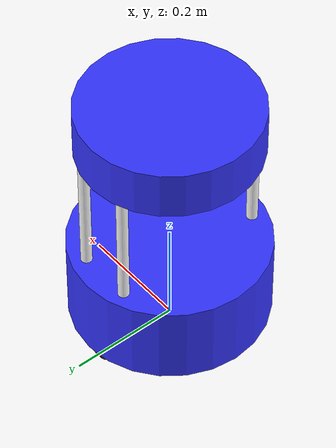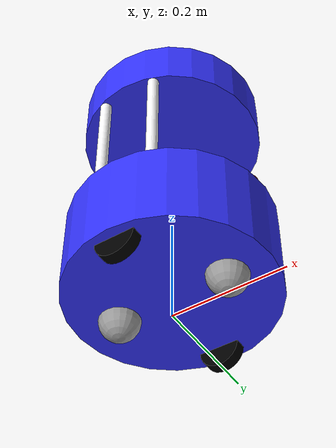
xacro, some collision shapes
<?xml version="1.0"?>
<robot xmlns:xacro="http://www.ros.org/wiki/xacro" name="barista_bot">

    <!-- Arguments -->
    <xacro:arg name="robot_name" default="robot1"/>
    <xacro:property name = "robot_name" value = "$(arg robot_name)"/>

    <xacro:arg name="robot_color" default="Blue"/>
    <xacro:property name = "robot_color" value = "$(arg robot_color)"/>
    <!-- PLUGINS -->

    <!-- Materials -->
    <material name="white"><color rgba="1 1 1 1"/></material>
    <material name="orange"><color rgba="1 0.3 0.1 1"/></material>
    <material name="Blue"><color rgba="0.2 0.2 1 1"/></material>
    <material name="black"><color rgba="0 0 0 1"/></material>
    <material name="Red"><color rgba="1 0 0 1"/></material>

    <!-- Base -->
    <link name="base_footprint"/>

    <joint name="base_joint" type="fixed">
        <parent link="base_footprint"/>
        <child link="base_link"/>
        <origin xyz="0 0 0.1127"/>
    </joint>

    <link name="base_link">
        <inertial>
        <mass value="10.0"/>
        <origin xyz="0 0 0" rpy="0 0 0"/>
        <inertia ixx="0.09923083333333334" ixy="0" ixz="0" iyy="0.09923083333333334" iyz="0" izz="0.15842"/>
        </inertial>
        <visual>
        <origin xyz="0 0 0"/>
        <geometry><cylinder radius="0.178" length="0.155"/></geometry>
        <material name="${robot_color}"/>
        </visual>
        <collision>
        <origin xyz="0 0 0"/>
        <geometry><cylinder radius="0.178" length="0.155"/></geometry>
        </collision>
    </link>

    <gazebo reference="base_link">
      <mu1 value="0.0"/>
      <mu2 value="0.0"/>
      <kp value="1000000.0"/>
      <kd value="10.0"/>
      <fdir1 value="1 0 0"/>
      <material>Gazebo/${robot_color}</material>
    </gazebo>

    <!-- Include modular components -->
    <xacro:include filename="$(find barista_robot_description)/xacro/cup_holder_tray.xacro"/>
    <xacro:include filename="$(find barista_robot_description)/xacro/standoff_rod.xacro"/>
    <xacro:include filename="$(find barista_robot_description)/xacro/drive_wheel.xacro"/>
    <xacro:include filename="$(find barista_robot_description)/xacro/caster_wheel.xacro"/>
    <xacro:include filename="$(find barista_robot_description)/xacro/laser_scanner.xacro"/>

    <!-- Add parts with parameters -->
    <xacro:cup_holder_tray parent="base_link"/>

    <!-- 4 standoff rods -->
    <xacro:standoff_rod name="Standoff_Rod_1" parent="base_link" xyz="0.05 0.14 0.1875"/>
    <xacro:standoff_rod name="Standoff_Rod_2" parent="base_link" xyz="-0.05 -0.14 0.1875"/>
    <xacro:standoff_rod name="Standoff_Rod_3" parent="base_link" xyz="0.05 -0.14 0.1875"/>
    <xacro:standoff_rod name="Standoff_Rod_4" parent="base_link" xyz="-0.05 0.14 0.1875"/>

    <!-- Drive wheels -->
    <xacro:drive_wheel side="left" name="left_wheel" parent="base_link" xyz="0 0.15 -0.0775"/>
    <xacro:drive_wheel side="right" name="right_wheel" parent="base_link" xyz="0 -0.15 -0.0775"/>

    <!-- Casters -->
    <xacro:caster_wheel name="front_caster" parent="base_link" xyz="0.1 0.0 -0.0775"/>
    <xacro:caster_wheel name="rear_caster" parent="base_link" xyz="-0.1 0.0 -0.0775"/>

    <!-- Laser include -->
    <xacro:laser_scanner include_laser="True"/>
    <!-- Laser -->

    <gazebo>
    <plugin filename="libgazebo_ros_diff_drive.so" name="differential_drive_controller">
        <ros>
            <namespace>${robot_name}</namespace>
            <remapping>~/cmd_vel:=cmd_vel</remapping>
        </ros>

        <!-- wheels -->
        <left_joint>left_wheel_joint</left_joint>
        <right_joint>right_wheel_joint</right_joint>

        <!-- kinematics -->
        <wheel_separation>0.3</wheel_separation>
        <wheel_diameter>0.0704</wheel_diameter>

        <!-- limits -->
        <max_wheel_torque>1.0</max_wheel_torque>
        <max_wheel_acceleration>2.0</max_wheel_acceleration>

        <!-- ROS topics -->
        <odometry_frame>${robot_name}/odom</odometry_frame>
        <robot_base_frame>${robot_name}/base_footprint</robot_base_frame>

        <!-- output -->
        <publish_odom>true</publish_odom>
        <publish_odom_tf>true</publish_odom_tf>

        <!-- update -->
        <update_rate>50.0</update_rate>

    </plugin>
    </gazebo>

    <gazebo>
        <plugin name="barista_bot_joint_state" filename="libgazebo_ros_joint_state_publisher.so">
        <ros>
            <namespace>${robot_name}</namespace>
            <remapping>~/out:=joint_states</remapping>
        </ros>
        <update_rate>30</update_rate>
        <joint_name>left_wheel_joint</joint_name>
        <joint_name>right_wheel_joint</joint_name>
      </plugin>
    </gazebo>

</robot>

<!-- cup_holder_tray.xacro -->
<robot xmlns:xacro="http://www.ros.org/wiki/xacro">
<xacro:arg name="robot_color" default="Red"/>
<xacro:property name = "robot_color" value = "$(arg robot_color)"/>
  <xacro:macro name="cup_holder_tray" params="parent">
    <joint name="Cup_Holder_Tray_joint" type="fixed">
      <parent link="${parent}"/>
      <child link="Cup_Holder_Tray_link"/>
      <origin xyz="0 0 0.3425"/>
    </joint>

    <link name="Cup_Holder_Tray_link">
      <inertial>
        <mass value="8.0"/>
        <origin xyz="0 0 0" rpy="0 0 0"/>
        <inertia ixx="0.0566" ixy="0" ixz="0" iyy="0.0566" iyz="0" izz="0.1024"/>
      </inertial>
      <visual>
        <origin xyz="0 0 0"/>
        <geometry>
          <cylinder radius="0.160" length="0.090"/>
        </geometry>
        <material name="${robot_color}"/>
      </visual>
      <collision>
        <origin xyz="0 0 0"/>
        <geometry>
          <cylinder radius="0.160" length="0.090"/>
        </geometry>
      </collision>
    </link>

    <gazebo reference="Cup_Holder_Tray_link">
      <mu1 value="0.0"/>
      <mu2 value="0.0"/>
      <kp value="1000000.0"/>
      <kd value="10.0"/>
      <fdir1 value="1 0 0"/>
      <material>Gazebo/${robot_color}</material>
    </gazebo>

  </xacro:macro>
</robot>

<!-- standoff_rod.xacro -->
<robot xmlns:xacro="http://www.ros.org/wiki/xacro">
  <xacro:macro name="standoff_rod" params="name parent xyz">
    <joint name="${name}_joint" type="fixed">
      <parent link="${parent}"/>
      <child link="${name}_link"/>
      <origin xyz="${xyz}"/>
    </joint>

    <link name="${name}_link">
      <inertial>
        <mass value="0.5"/>
        <origin xyz="0 0 0" rpy="0 0 0"/>
        <inertia ixx="0.0020291666666666665" ixy="0" ixz="0" iyy="0.0020291666666666665" iyz="0" izz="2.5e-05"/>
      </inertial>
      <visual>
        <origin xyz="0 0 0"/>
        <geometry>
          <cylinder radius="0.01" length="0.22"/>
        </geometry>
        <material name="white"/>
      </visual>
      <collision>
        <origin xyz="0 0 0"/>
        <geometry>
          <cylinder radius="0.01" length="0.22"/>
        </geometry>
      </collision>
    </link>

    <gazebo reference="${name}_link">
      <material>Gazebo/white</material>
    </gazebo>
  </xacro:macro>
</robot>

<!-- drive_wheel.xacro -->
<robot xmlns:xacro="http://www.ros.org/wiki/xacro">
<xacro:macro name="drive_wheel" params="side name parent xyz">

  <xacro:if value="${side == 'left'}">
    <joint name="${name}_joint" type="continuous">
      <parent link="${parent}"/>
      <child link="${name}"/>
      <origin xyz="${xyz}" rpy="-1.57 0 0"/>
      <axis xyz="0 0 1"/>
    </joint>
  </xacro:if>

  <xacro:unless value="${side == 'left'}">
    <joint name="${name}_joint" type="continuous">
      <parent link="${parent}"/>
      <child link="${name}"/>
      <origin xyz="${xyz}" rpy="1.57 0 0"/>
      <axis xyz="0 0 -1"/>
    </joint>
  </xacro:unless>

    <link name="${name}">
      <inertial>
        <mass value="1.5"/>
        <origin xyz="0 0 0" rpy="-1.57 0 0"/>
        <inertia ixx="0.000517685" ixy="0" ixz="0" iyy="0.000517685" iyz="0" izz="0.00092928"/>
      </inertial>
      <visual>
        <origin xyz="0 0 0"/>
        <geometry>
          <cylinder radius="0.0352" length="0.0206"/>
        </geometry>
        <material name="black"/>
      </visual>
      <collision>
        <origin xyz="0 0 0"/>
        <geometry>
          <cylinder radius="0.0352" length="0.0206"/>
        </geometry>
      </collision>
    </link>

    <gazebo reference="${name}">
      <mu1 value="50.0"/>
      <mu2 value="50.0"/>
      <kp value="1000000.0"/>
      <kd value="10.0"/>
      <fdir1 value="1 0 0"/>
      <material>Gazebo/Black</material>
    </gazebo>
  </xacro:macro>
</robot>

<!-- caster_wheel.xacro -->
<robot xmlns:xacro="http://www.ros.org/wiki/xacro">
  <xacro:macro name="caster_wheel" params="name parent xyz">
    <joint name="${name}_joint" type="fixed">
      <parent link="${parent}"/>
      <child link="${name}"/>
      <origin xyz="${xyz}" rpy="0 0 0"/>
    </joint>

    <link name="${name}">
      <visual>
        <geometry>
          <sphere radius="0.0352"/>
        </geometry>
      </visual>
      <collision>
        <geometry>
          <sphere radius="0.0352"/>
        </geometry>
      </collision>
      <inertial>
        <mass value="0.5"/>
        <origin xyz="0 0 0" rpy="0 0 0"/>
        <inertia ixx=" 0.0020291666666666665" ixy="0" ixz="0" iyy=" 0.0020291666666666665" iyz="0" izz="2.5e-05"/>
      </inertial>
    </link>

    <gazebo reference="${name}">
      <mu1 value="0.0"/>
      <mu2 value="0.0"/>
      <kp value="10000000.0"/>
      <kd value="100.0"/>
      <fdir1 value="0 0 1"/>
      <material>Gazebo/Gray</material>
    </gazebo>
  </xacro:macro>
</robot>

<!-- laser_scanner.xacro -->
<robot xmlns:xacro="http://www.ros.org/wiki/xacro">
<xacro:arg name="robot_name" default="robot1"/>
<xacro:property name = "robot_name" value = "$(arg robot_name)"/>
  <xacro:macro name="laser_scanner" params="include_laser:=true">
    <xacro:if value="${include_laser}">
    <joint name="front_laser_joint" type="fixed">
      <parent link="base_link"/>
      <child link="front_laser"/>
      <origin xyz="0.14 0.0 0.0775"/>
    </joint>

    <link name="front_laser">
      <inertial>
        <mass value="0.05"/>
        <origin xyz="0 0 0"/>
        <inertia ixx="0.000252666667" ixy="0" ixz="0" iyy="0.000252666667" iyz="0" izz="0.0005"/>
      </inertial>
      <visual>
        <geometry>
          <mesh filename="package://barista_robot_description/meshes/sick_s3000.dae" scale="0.2 0.2 0.2"/>
        </geometry>
        <material name="red"/>
      </visual>
      <collision>
        <geometry>
          <cylinder radius="0.025" length="0.06"/>
        </geometry>
      </collision>
    </link>

    <gazebo reference="front_laser_joint">
      <preserveFixedJoint>true</preserveFixedJoint>
    </gazebo>
    <gazebo reference="front_laser">
      <material>Gazebo/DarkGrey</material>
      <sensor name="front_laser_ray" type="ray">
        <pose>0.03 0 0.02 0 0 0</pose>
        <ray>
          <scan>
            <horizontal>
              <samples>200</samples>
              <resolution>1.0</resolution>
              <min_angle>-3.14</min_angle>
              <max_angle>3.147</max_angle>
            </horizontal>
          </scan>
          <range>
            <min>0.1</min>
            <max>5.0</max>
          </range>
        </ray>
        <always_on>true</always_on>
        <visualize>true</visualize>
        <update_rate>10.0</update_rate>
        <plugin name="laser" filename="libgazebo_ros_ray_sensor.so">
          <ros>
            <namespace>${robot_name}</namespace>
            <remapping>~/out:=scan</remapping>
          </ros>
          <output_type>sensor_msgs/LaserScan</output_type>
          <frame_name>${robot_name}/front_laser</frame_name>
        </plugin>
      </sensor>
    </gazebo>
   </xacro:if>
  </xacro:macro>
</robot>
